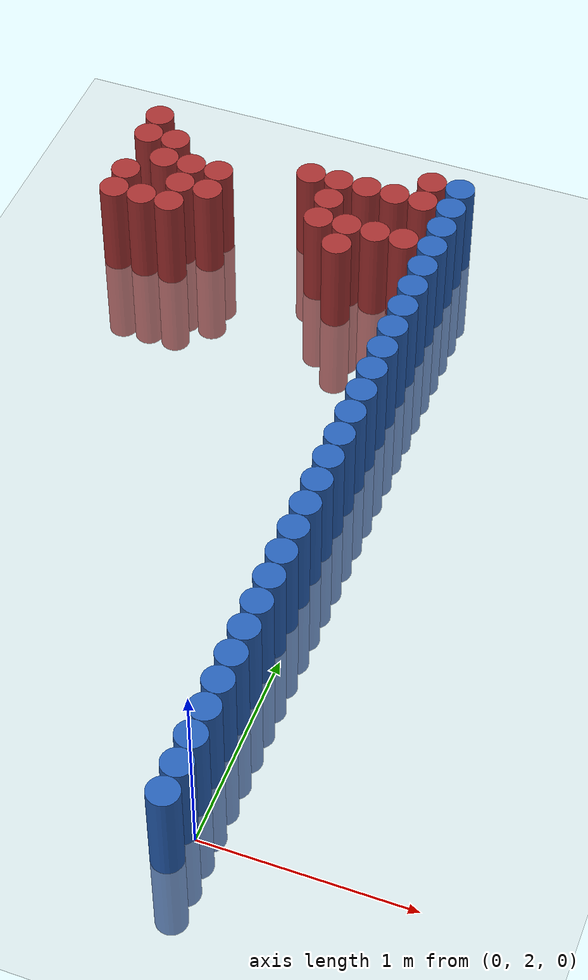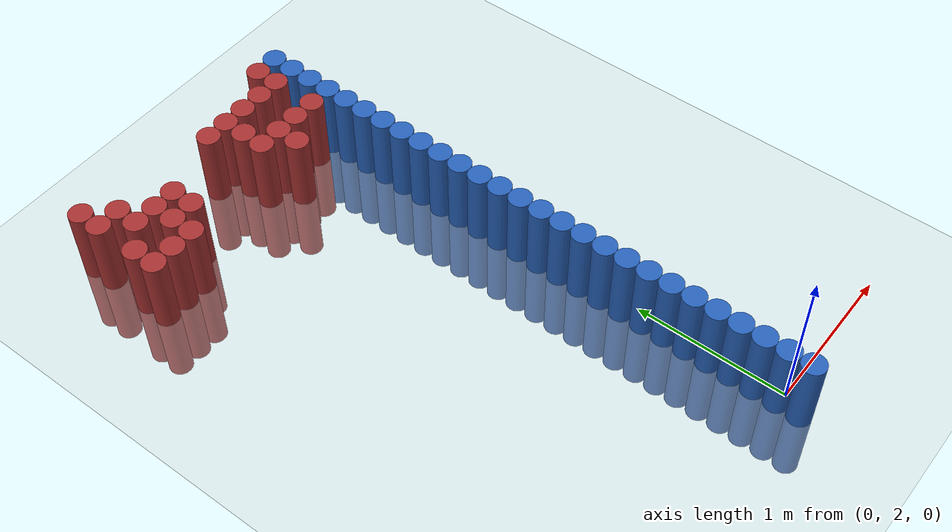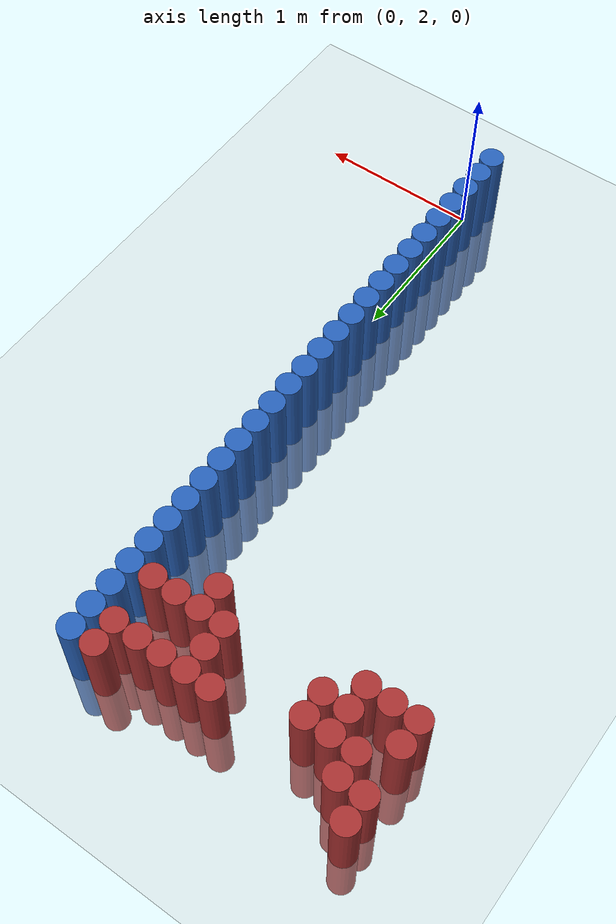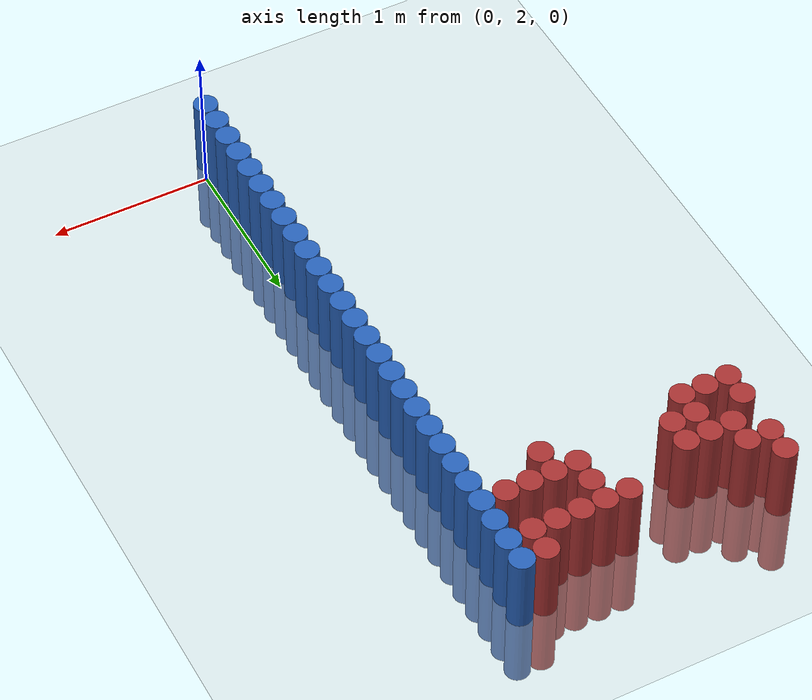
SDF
<sdf version="1.6">
 <world name="default">
  <model name="ground_plane">
   <static>1</static>
   <link name="link">
    <collision name="collision">
     <geometry><plane><normal>0 0 1</normal><size>100 100</size></plane></geometry>
     <surface><friction><ode><mu>100</mu><mu2>50</mu2></ode></friction></surface>
    </collision>
    <visual name="visual">
     <cast_shadows>0</cast_shadows>
     <geometry><plane><normal>0 0 1</normal><size>100 100</size></plane></geometry>
     <material>
      <script><uri>file://media/materials/scripts/gazebo.material</uri><name>Gazebo/Grey</name></script>
     </material>
    </visual>
   </link>
  </model>
  <model name="unit_cylinder_52">
   <static>1</static>
   <pose>-0.075000 1.875000 0.000000 0.000000 0.000000 0.000000</pose>
   <link name="link">
    <inertial>
     <mass>1</mass>
     <inertia><ixx>0.145833</ixx><ixy>0</ixy><ixz>0</ixz><iyy>0.145833</iyy><iyz>0</iyz><izz>0.125</izz></inertia>
    </inertial>
    <collision name="collision">
     <geometry><cylinder><radius>0.075000</radius><length>1</length></cylinder></geometry>
    </collision>
    <visual name="visual">
     <geometry><cylinder><radius>0.075000</radius><length>1</length></cylinder></geometry>
     <material>
      <ambient>0.152000 0.379000 0.720000 1</ambient>
      <diffuse>0.152000 0.379000 0.720000 1</diffuse>
     </material>
     <material>
      <script><name>Gazebo/Grey</name><uri>file://media/materials/scripts/gazebo.material</uri></script>
     </material>
    </visual>
   </link>
  </model>
  <model name="unit_cylinder_54">
   <static>1</static>
   <pose>-0.075000 2.025000 0.000000 0.000000 0.000000 0.000000</pose>
   <link name="link">
    <inertial>
     <mass>1</mass>
     <inertia><ixx>0.145833</ixx><ixy>0</ixy><ixz>0</ixz><iyy>0.145833</iyy><iyz>0</iyz><izz>0.125</izz></inertia>
    </inertial>
    <collision name="collision">
     <geometry><cylinder><radius>0.075000</radius><length>1</length></cylinder></geometry>
    </collision>
    <visual name="visual">
     <geometry><cylinder><radius>0.075000</radius><length>1</length></cylinder></geometry>
     <material>
      <ambient>0.152000 0.379000 0.720000 1</ambient>
      <diffuse>0.152000 0.379000 0.720000 1</diffuse>
     </material>
     <material>
      <script><name>Gazebo/Grey</name><uri>file://media/materials/scripts/gazebo.material</uri></script>
     </material>
    </visual>
   </link>
  </model>
  <model name="unit_cylinder_56">
   <static>1</static>
   <pose>-0.075000 2.175000 0.000000 0.000000 0.000000 0.000000</pose>
   <link name="link">
    <inertial>
     <mass>1</mass>
     <inertia><ixx>0.145833</ixx><ixy>0</ixy><ixz>0</ixz><iyy>0.145833</iyy><iyz>0</iyz><izz>0.125</izz></inertia>
    </inertial>
    <collision name="collision">
     <geometry><cylinder><radius>0.075000</radius><length>1</length></cylinder></geometry>
    </collision>
    <visual name="visual">
     <geometry><cylinder><radius>0.075000</radius><length>1</length></cylinder></geometry>
     <material>
      <ambient>0.152000 0.379000 0.720000 1</ambient>
      <diffuse>0.152000 0.379000 0.720000 1</diffuse>
     </material>
     <material>
      <script><name>Gazebo/Grey</name><uri>file://media/materials/scripts/gazebo.material</uri></script>
     </material>
    </visual>
   </link>
  </model>
  <model name="unit_cylinder_58">
   <static>1</static>
   <pose>-0.075000 2.325000 0.000000 0.000000 0.000000 0.000000</pose>
   <link name="link">
    <inertial>
     <mass>1</mass>
     <inertia><ixx>0.145833</ixx><ixy>0</ixy><ixz>0</ixz><iyy>0.145833</iyy><iyz>0</iyz><izz>0.125</izz></inertia>
    </inertial>
    <collision name="collision">
     <geometry><cylinder><radius>0.075000</radius><length>1</length></cylinder></geometry>
    </collision>
    <visual name="visual">
     <geometry><cylinder><radius>0.075000</radius><length>1</length></cylinder></geometry>
     <material>
      <ambient>0.152000 0.379000 0.720000 1</ambient>
      <diffuse>0.152000 0.379000 0.720000 1</diffuse>
     </material>
     <material>
      <script><name>Gazebo/Grey</name><uri>file://media/materials/scripts/gazebo.material</uri></script>
     </material>
    </visual>
   </link>
  </model>
  <model name="unit_cylinder_60">
   <static>1</static>
   <pose>-0.075000 2.475000 0.000000 0.000000 0.000000 0.000000</pose>
   <link name="link">
    <inertial>
     <mass>1</mass>
     <inertia><ixx>0.145833</ixx><ixy>0</ixy><ixz>0</ixz><iyy>0.145833</iyy><iyz>0</iyz><izz>0.125</izz></inertia>
    </inertial>
    <collision name="collision">
     <geometry><cylinder><radius>0.075000</radius><length>1</length></cylinder></geometry>
    </collision>
    <visual name="visual">
     <geometry><cylinder><radius>0.075000</radius><length>1</length></cylinder></geometry>
     <material>
      <ambient>0.152000 0.379000 0.720000 1</ambient>
      <diffuse>0.152000 0.379000 0.720000 1</diffuse>
     </material>
     <material>
      <script><name>Gazebo/Grey</name><uri>file://media/materials/scripts/gazebo.material</uri></script>
     </material>
    </visual>
   </link>
  </model>
  <model name="unit_cylinder_62">
   <static>1</static>
   <pose>-0.075000 2.625000 0.000000 0.000000 0.000000 0.000000</pose>
   <link name="link">
    <inertial>
     <mass>1</mass>
     <inertia><ixx>0.145833</ixx><ixy>0</ixy><ixz>0</ixz><iyy>0.145833</iyy><iyz>0</iyz><izz>0.125</izz></inertia>
    </inertial>
    <collision name="collision">
     <geometry><cylinder><radius>0.075000</radius><length>1</length></cylinder></geometry>
    </collision>
    <visual name="visual">
     <geometry><cylinder><radius>0.075000</radius><length>1</length></cylinder></geometry>
     <material>
      <ambient>0.152000 0.379000 0.720000 1</ambient>
      <diffuse>0.152000 0.379000 0.720000 1</diffuse>
     </material>
     <material>
      <script><name>Gazebo/Grey</name><uri>file://media/materials/scripts/gazebo.material</uri></script>
     </material>
    </visual>
   </link>
  </model>
  <model name="unit_cylinder_64">
   <static>1</static>
   <pose>-0.075000 2.775000 0.000000 0.000000 0.000000 0.000000</pose>
   <link name="link">
    <inertial>
     <mass>1</mass>
     <inertia><ixx>0.145833</ixx><ixy>0</ixy><ixz>0</ixz><iyy>0.145833</iyy><iyz>0</iyz><izz>0.125</izz></inertia>
    </inertial>
    <collision name="collision">
     <geometry><cylinder><radius>0.075000</radius><length>1</length></cylinder></geometry>
    </collision>
    <visual name="visual">
     <geometry><cylinder><radius>0.075000</radius><length>1</length></cylinder></geometry>
     <material>
      <ambient>0.152000 0.379000 0.720000 1</ambient>
      <diffuse>0.152000 0.379000 0.720000 1</diffuse>
     </material>
     <material>
      <script><name>Gazebo/Grey</name><uri>file://media/materials/scripts/gazebo.material</uri></script>
     </material>
    </visual>
   </link>
  </model>
  <model name="unit_cylinder_66">
   <static>1</static>
   <pose>-0.075000 2.925000 0.000000 0.000000 0.000000 0.000000</pose>
   <link name="link">
    <inertial>
     <mass>1</mass>
     <inertia><ixx>0.145833</ixx><ixy>0</ixy><ixz>0</ixz><iyy>0.145833</iyy><iyz>0</iyz><izz>0.125</izz></inertia>
    </inertial>
    <collision name="collision">
     <geometry><cylinder><radius>0.075000</radius><length>1</length></cylinder></geometry>
    </collision>
    <visual name="visual">
     <geometry><cylinder><radius>0.075000</radius><length>1</length></cylinder></geometry>
     <material>
      <ambient>0.152000 0.379000 0.720000 1</ambient>
      <diffuse>0.152000 0.379000 0.720000 1</diffuse>
     </material>
     <material>
      <script><name>Gazebo/Grey</name><uri>file://media/materials/scripts/gazebo.material</uri></script>
     </material>
    </visual>
   </link>
  </model>
  <model name="unit_cylinder_68">
   <static>1</static>
   <pose>-0.075000 3.075000 0.000000 0.000000 0.000000 0.000000</pose>
   <link name="link">
    <inertial>
     <mass>1</mass>
     <inertia><ixx>0.145833</ixx><ixy>0</ixy><ixz>0</ixz><iyy>0.145833</iyy><iyz>0</iyz><izz>0.125</izz></inertia>
    </inertial>
    <collision name="collision">
     <geometry><cylinder><radius>0.075000</radius><length>1</length></cylinder></geometry>
    </collision>
    <visual name="visual">
     <geometry><cylinder><radius>0.075000</radius><length>1</length></cylinder></geometry>
     <material>
      <ambient>0.152000 0.379000 0.720000 1</ambient>
      <diffuse>0.152000 0.379000 0.720000 1</diffuse>
     </material>
     <material>
      <script><name>Gazebo/Grey</name><uri>file://media/materials/scripts/gazebo.material</uri></script>
     </material>
    </visual>
   </link>
  </model>
  <model name="unit_cylinder_70">
   <static>1</static>
   <pose>-0.075000 3.225000 0.000000 0.000000 0.000000 0.000000</pose>
   <link name="link">
    <inertial>
     <mass>1</mass>
     <inertia><ixx>0.145833</ixx><ixy>0</ixy><ixz>0</ixz><iyy>0.145833</iyy><iyz>0</iyz><izz>0.125</izz></inertia>
    </inertial>
    <collision name="collision">
     <geometry><cylinder><radius>0.075000</radius><length>1</length></cylinder></geometry>
    </collision>
    <visual name="visual">
     <geometry><cylinder><radius>0.075000</radius><length>1</length></cylinder></geometry>
     <material>
      <ambient>0.152000 0.379000 0.720000 1</ambient>
      <diffuse>0.152000 0.379000 0.720000 1</diffuse>
     </material>
     <material>
      <script><name>Gazebo/Grey</name><uri>file://media/materials/scripts/gazebo.material</uri></script>
     </material>
    </visual>
   </link>
  </model>
  <model name="unit_cylinder_72">
   <static>1</static>
   <pose>-0.075000 3.375000 0.000000 0.000000 0.000000 0.000000</pose>
   <link name="link">
    <inertial>
     <mass>1</mass>
     <inertia><ixx>0.145833</ixx><ixy>0</ixy><ixz>0</ixz><iyy>0.145833</iyy><iyz>0</iyz><izz>0.125</izz></inertia>
    </inertial>
    <collision name="collision">
     <geometry><cylinder><radius>0.075000</radius><length>1</length></cylinder></geometry>
    </collision>
    <visual name="visual">
     <geometry><cylinder><radius>0.075000</radius><length>1</length></cylinder></geometry>
     <material>
      <ambient>0.152000 0.379000 0.720000 1</ambient>
      <diffuse>0.152000 0.379000 0.720000 1</diffuse>
     </material>
     <material>
      <script><name>Gazebo/Grey</name><uri>file://media/materials/scripts/gazebo.material</uri></script>
     </material>
    </visual>
   </link>
  </model>
  <model name="unit_cylinder_74">
   <static>1</static>
   <pose>-0.075000 3.525000 0.000000 0.000000 0.000000 0.000000</pose>
   <link name="link">
    <inertial>
     <mass>1</mass>
     <inertia><ixx>0.145833</ixx><ixy>0</ixy><ixz>0</ixz><iyy>0.145833</iyy><iyz>0</iyz><izz>0.125</izz></inertia>
    </inertial>
    <collision name="collision">
     <geometry><cylinder><radius>0.075000</radius><length>1</length></cylinder></geometry>
    </collision>
    <visual name="visual">
     <geometry><cylinder><radius>0.075000</radius><length>1</length></cylinder></geometry>
     <material>
      <ambient>0.152000 0.379000 0.720000 1</ambient>
      <diffuse>0.152000 0.379000 0.720000 1</diffuse>
     </material>
     <material>
      <script><name>Gazebo/Grey</name><uri>file://media/materials/scripts/gazebo.material</uri></script>
     </material>
    </visual>
   </link>
  </model>
  <model name="unit_cylinder_76">
   <static>1</static>
   <pose>-0.075000 3.675000 0.000000 0.000000 0.000000 0.000000</pose>
   <link name="link">
    <inertial>
     <mass>1</mass>
     <inertia><ixx>0.145833</ixx><ixy>0</ixy><ixz>0</ixz><iyy>0.145833</iyy><iyz>0</iyz><izz>0.125</izz></inertia>
    </inertial>
    <collision name="collision">
     <geometry><cylinder><radius>0.075000</radius><length>1</length></cylinder></geometry>
    </collision>
    <visual name="visual">
     <geometry><cylinder><radius>0.075000</radius><length>1</length></cylinder></geometry>
     <material>
      <ambient>0.152000 0.379000 0.720000 1</ambient>
      <diffuse>0.152000 0.379000 0.720000 1</diffuse>
     </material>
     <material>
      <script><name>Gazebo/Grey</name><uri>file://media/materials/scripts/gazebo.material</uri></script>
     </material>
    </visual>
   </link>
  </model>
  <model name="unit_cylinder_78">
   <static>1</static>
   <pose>-0.075000 3.825000 0.000000 0.000000 0.000000 0.000000</pose>
   <link name="link">
    <inertial>
     <mass>1</mass>
     <inertia><ixx>0.145833</ixx><ixy>0</ixy><ixz>0</ixz><iyy>0.145833</iyy><iyz>0</iyz><izz>0.125</izz></inertia>
    </inertial>
    <collision name="collision">
     <geometry><cylinder><radius>0.075000</radius><length>1</length></cylinder></geometry>
    </collision>
    <visual name="visual">
     <geometry><cylinder><radius>0.075000</radius><length>1</length></cylinder></geometry>
     <material>
      <ambient>0.152000 0.379000 0.720000 1</ambient>
      <diffuse>0.152000 0.379000 0.720000 1</diffuse>
     </material>
     <material>
      <script><name>Gazebo/Grey</name><uri>file://media/materials/scripts/gazebo.material</uri></script>
     </material>
    </visual>
   </link>
  </model>
  <model name="unit_cylinder_80">
   <static>1</static>
   <pose>-0.075000 3.975000 0.000000 0.000000 0.000000 0.000000</pose>
   <link name="link">
    <inertial>
     <mass>1</mass>
     <inertia><ixx>0.145833</ixx><ixy>0</ixy><ixz>0</ixz><iyy>0.145833</iyy><iyz>0</iyz><izz>0.125</izz></inertia>
    </inertial>
    <collision name="collision">
     <geometry><cylinder><radius>0.075000</radius><length>1</length></cylinder></geometry>
    </collision>
    <visual name="visual">
     <geometry><cylinder><radius>0.075000</radius><length>1</length></cylinder></geometry>
     <material>
      <ambient>0.152000 0.379000 0.720000 1</ambient>
      <diffuse>0.152000 0.379000 0.720000 1</diffuse>
     </material>
     <material>
      <script><name>Gazebo/Grey</name><uri>file://media/materials/scripts/gazebo.material</uri></script>
     </material>
    </visual>
   </link>
  </model>
  <model name="unit_cylinder_82">
   <static>1</static>
   <pose>-0.075000 4.125000 0.000000 0.000000 0.000000 0.000000</pose>
   <link name="link">
    <inertial>
     <mass>1</mass>
     <inertia><ixx>0.145833</ixx><ixy>0</ixy><ixz>0</ixz><iyy>0.145833</iyy><iyz>0</iyz><izz>0.125</izz></inertia>
    </inertial>
    <collision name="collision">
     <geometry><cylinder><radius>0.075000</radius><length>1</length></cylinder></geometry>
    </collision>
    <visual name="visual">
     <geometry><cylinder><radius>0.075000</radius><length>1</length></cylinder></geometry>
     <material>
      <ambient>0.152000 0.379000 0.720000 1</ambient>
      <diffuse>0.152000 0.379000 0.720000 1</diffuse>
     </material>
     <material>
      <script><name>Gazebo/Grey</name><uri>file://media/materials/scripts/gazebo.material</uri></script>
     </material>
    </visual>
   </link>
  </model>
  <model name="unit_cylinder_84">
   <static>1</static>
   <pose>-0.075000 4.275000 0.000000 0.000000 0.000000 0.000000</pose>
   <link name="link">
    <inertial>
     <mass>1</mass>
     <inertia><ixx>0.145833</ixx><ixy>0</ixy><ixz>0</ixz><iyy>0.145833</iyy><iyz>0</iyz><izz>0.125</izz></inertia>
    </inertial>
    <collision name="collision">
     <geometry><cylinder><radius>0.075000</radius><length>1</length></cylinder></geometry>
    </collision>
    <visual name="visual">
     <geometry><cylinder><radius>0.075000</radius><length>1</length></cylinder></geometry>
     <material>
      <ambient>0.152000 0.379000 0.720000 1</ambient>
      <diffuse>0.152000 0.379000 0.720000 1</diffuse>
     </material>
     <material>
      <script><name>Gazebo/Grey</name><uri>file://media/materials/scripts/gazebo.material</uri></script>
     </material>
    </visual>
   </link>
  </model>
  <model name="unit_cylinder_86">
   <static>1</static>
   <pose>-0.075000 4.425000 0.000000 0.000000 0.000000 0.000000</pose>
   <link name="link">
    <inertial>
     <mass>1</mass>
     <inertia><ixx>0.145833</ixx><ixy>0</ixy><ixz>0</ixz><iyy>0.145833</iyy><iyz>0</iyz><izz>0.125</izz></inertia>
    </inertial>
    <collision name="collision">
     <geometry><cylinder><radius>0.075000</radius><length>1</length></cylinder></geometry>
    </collision>
    <visual name="visual">
     <geometry><cylinder><radius>0.075000</radius><length>1</length></cylinder></geometry>
     <material>
      <ambient>0.152000 0.379000 0.720000 1</ambient>
      <diffuse>0.152000 0.379000 0.720000 1</diffuse>
     </material>
     <material>
      <script><name>Gazebo/Grey</name><uri>file://media/materials/scripts/gazebo.material</uri></script>
     </material>
    </visual>
   </link>
  </model>
  <model name="unit_cylinder_88">
   <static>1</static>
   <pose>-0.075000 4.575000 0.000000 0.000000 0.000000 0.000000</pose>
   <link name="link">
    <inertial>
     <mass>1</mass>
     <inertia><ixx>0.145833</ixx><ixy>0</ixy><ixz>0</ixz><iyy>0.145833</iyy><iyz>0</iyz><izz>0.125</izz></inertia>
    </inertial>
    <collision name="collision">
     <geometry><cylinder><radius>0.075000</radius><length>1</length></cylinder></geometry>
    </collision>
    <visual name="visual">
     <geometry><cylinder><radius>0.075000</radius><length>1</length></cylinder></geometry>
     <material>
      <ambient>0.152000 0.379000 0.720000 1</ambient>
      <diffuse>0.152000 0.379000 0.720000 1</diffuse>
     </material>
     <material>
      <script><name>Gazebo/Grey</name><uri>file://media/materials/scripts/gazebo.material</uri></script>
     </material>
    </visual>
   </link>
  </model>
  <model name="unit_cylinder_90">
   <static>1</static>
   <pose>-0.075000 4.725000 0.000000 0.000000 0.000000 0.000000</pose>
   <link name="link">
    <inertial>
     <mass>1</mass>
     <inertia><ixx>0.145833</ixx><ixy>0</ixy><ixz>0</ixz><iyy>0.145833</iyy><iyz>0</iyz><izz>0.125</izz></inertia>
    </inertial>
    <collision name="collision">
     <geometry><cylinder><radius>0.075000</radius><length>1</length></cylinder></geometry>
    </collision>
    <visual name="visual">
     <geometry><cylinder><radius>0.075000</radius><length>1</length></cylinder></geometry>
     <material>
      <ambient>0.152000 0.379000 0.720000 1</ambient>
      <diffuse>0.152000 0.379000 0.720000 1</diffuse>
     </material>
     <material>
      <script><name>Gazebo/Grey</name><uri>file://media/materials/scripts/gazebo.material</uri></script>
     </material>
    </visual>
   </link>
  </model>
  <model name="unit_cylinder_92">
   <static>1</static>
   <pose>-0.075000 4.875000 0.000000 0.000000 0.000000 0.000000</pose>
   <link name="link">
    <inertial>
     <mass>1</mass>
     <inertia><ixx>0.145833</ixx><ixy>0</ixy><ixz>0</ixz><iyy>0.145833</iyy><iyz>0</iyz><izz>0.125</izz></inertia>
    </inertial>
    <collision name="collision">
     <geometry><cylinder><radius>0.075000</radius><length>1</length></cylinder></geometry>
    </collision>
    <visual name="visual">
     <geometry><cylinder><radius>0.075000</radius><length>1</length></cylinder></geometry>
     <material>
      <ambient>0.152000 0.379000 0.720000 1</ambient>
      <diffuse>0.152000 0.379000 0.720000 1</diffuse>
     </material>
     <material>
      <script><name>Gazebo/Grey</name><uri>file://media/materials/scripts/gazebo.material</uri></script>
     </material>
    </visual>
   </link>
  </model>
  <model name="unit_cylinder_94">
   <static>1</static>
   <pose>-0.075000 5.025000 0.000000 0.000000 0.000000 0.000000</pose>
   <link name="link">
    <inertial>
     <mass>1</mass>
     <inertia><ixx>0.145833</ixx><ixy>0</ixy><ixz>0</ixz><iyy>0.145833</iyy><iyz>0</iyz><izz>0.125</izz></inertia>
    </inertial>
    <collision name="collision">
     <geometry><cylinder><radius>0.075000</radius><length>1</length></cylinder></geometry>
    </collision>
    <visual name="visual">
     <geometry><cylinder><radius>0.075000</radius><length>1</length></cylinder></geometry>
     <material>
      <ambient>0.152000 0.379000 0.720000 1</ambient>
      <diffuse>0.152000 0.379000 0.720000 1</diffuse>
     </material>
     <material>
      <script><name>Gazebo/Grey</name><uri>file://media/materials/scripts/gazebo.material</uri></script>
     </material>
    </visual>
   </link>
  </model>
  <model name="unit_cylinder_241">
   <static>1</static>
   <pose>-1.725000 5.175000 0.000000 0.000000 0.000000 0.000000</pose>
   <link name="link">
    <inertial>
     <mass>1</mass>
     <inertia><ixx>0.145833</ixx><ixy>0</ixy><ixz>0</ixz><iyy>0.145833</iyy><iyz>0</iyz><izz>0.125</izz></inertia>
    </inertial>
    <collision name="collision">
     <geometry><cylinder><radius>0.075000</radius><length>1</length></cylinder></geometry>
    </collision>
    <visual name="visual">
     <geometry><cylinder><radius>0.075000</radius><length>1</length></cylinder></geometry>
     <material>
      <ambient>0.648000 0.192000 0.192000 1</ambient>
      <diffuse>0.648000 0.192000 0.192000 1</diffuse>
     </material>
     <material>
      <script><name>Gazebo/Grey</name><uri>file://media/materials/scripts/gazebo.material</uri></script>
     </material>
    </visual>
   </link>
  </model>
  <model name="unit_cylinder_242">
   <static>1</static>
   <pose>-1.725000 5.325000 0.000000 0.000000 0.000000 0.000000</pose>
   <link name="link">
    <inertial>
     <mass>1</mass>
     <inertia><ixx>0.145833</ixx><ixy>0</ixy><ixz>0</ixz><iyy>0.145833</iyy><iyz>0</iyz><izz>0.125</izz></inertia>
    </inertial>
    <collision name="collision">
     <geometry><cylinder><radius>0.075000</radius><length>1</length></cylinder></geometry>
    </collision>
    <visual name="visual">
     <geometry><cylinder><radius>0.075000</radius><length>1</length></cylinder></geometry>
     <material>
      <ambient>0.648000 0.192000 0.192000 1</ambient>
      <diffuse>0.648000 0.192000 0.192000 1</diffuse>
     </material>
     <material>
      <script><name>Gazebo/Grey</name><uri>file://media/materials/scripts/gazebo.material</uri></script>
     </material>
    </visual>
   </link>
  </model>
  <model name="unit_cylinder_243">
   <static>1</static>
   <pose>-1.725000 5.625000 0.000000 0.000000 0.000000 0.000000</pose>
   <link name="link">
    <inertial>
     <mass>1</mass>
     <inertia><ixx>0.145833</ixx><ixy>0</ixy><ixz>0</ixz><iyy>0.145833</iyy><iyz>0</iyz><izz>0.125</izz></inertia>
    </inertial>
    <collision name="collision">
     <geometry><cylinder><radius>0.075000</radius><length>1</length></cylinder></geometry>
    </collision>
    <visual name="visual">
     <geometry><cylinder><radius>0.075000</radius><length>1</length></cylinder></geometry>
     <material>
      <ambient>0.648000 0.192000 0.192000 1</ambient>
      <diffuse>0.648000 0.192000 0.192000 1</diffuse>
     </material>
     <material>
      <script><name>Gazebo/Grey</name><uri>file://media/materials/scripts/gazebo.material</uri></script>
     </material>
    </visual>
   </link>
  </model>
  <model name="unit_cylinder_244">
   <static>1</static>
   <pose>-1.725000 5.775000 0.000000 0.000000 0.000000 0.000000</pose>
   <link name="link">
    <inertial>
     <mass>1</mass>
     <inertia><ixx>0.145833</ixx><ixy>0</ixy><ixz>0</ixz><iyy>0.145833</iyy><iyz>0</iyz><izz>0.125</izz></inertia>
    </inertial>
    <collision name="collision">
     <geometry><cylinder><radius>0.075000</radius><length>1</length></cylinder></geometry>
    </collision>
    <visual name="visual">
     <geometry><cylinder><radius>0.075000</radius><length>1</length></cylinder></geometry>
     <material>
      <ambient>0.648000 0.192000 0.192000 1</ambient>
      <diffuse>0.648000 0.192000 0.192000 1</diffuse>
     </material>
     <material>
      <script><name>Gazebo/Grey</name><uri>file://media/materials/scripts/gazebo.material</uri></script>
     </material>
    </visual>
   </link>
  </model>
  <model name="unit_cylinder_256">
   <static>1</static>
   <pose>-1.575000 5.175000 0.000000 0.000000 0.000000 0.000000</pose>
   <link name="link">
    <inertial>
     <mass>1</mass>
     <inertia><ixx>0.145833</ixx><ixy>0</ixy><ixz>0</ixz><iyy>0.145833</iyy><iyz>0</iyz><izz>0.125</izz></inertia>
    </inertial>
    <collision name="collision">
     <geometry><cylinder><radius>0.075000</radius><length>1</length></cylinder></geometry>
    </collision>
    <visual name="visual">
     <geometry><cylinder><radius>0.075000</radius><length>1</length></cylinder></geometry>
     <material>
      <ambient>0.648000 0.192000 0.192000 1</ambient>
      <diffuse>0.648000 0.192000 0.192000 1</diffuse>
     </material>
     <material>
      <script><name>Gazebo/Grey</name><uri>file://media/materials/scripts/gazebo.material</uri></script>
     </material>
    </visual>
   </link>
  </model>
  <model name="unit_cylinder_257">
   <static>1</static>
   <pose>-1.575000 5.475000 0.000000 0.000000 0.000000 0.000000</pose>
   <link name="link">
    <inertial>
     <mass>1</mass>
     <inertia><ixx>0.145833</ixx><ixy>0</ixy><ixz>0</ixz><iyy>0.145833</iyy><iyz>0</iyz><izz>0.125</izz></inertia>
    </inertial>
    <collision name="collision">
     <geometry><cylinder><radius>0.075000</radius><length>1</length></cylinder></geometry>
    </collision>
    <visual name="visual">
     <geometry><cylinder><radius>0.075000</radius><length>1</length></cylinder></geometry>
     <material>
      <ambient>0.648000 0.192000 0.192000 1</ambient>
      <diffuse>0.648000 0.192000 0.192000 1</diffuse>
     </material>
     <material>
      <script><name>Gazebo/Grey</name><uri>file://media/materials/scripts/gazebo.material</uri></script>
     </material>
    </visual>
   </link>
  </model>
  <model name="unit_cylinder_258">
   <static>1</static>
   <pose>-1.575000 5.625000 0.000000 0.000000 0.000000 0.000000</pose>
   <link name="link">
    <inertial>
     <mass>1</mass>
     <inertia><ixx>0.145833</ixx><ixy>0</ixy><ixz>0</ixz><iyy>0.145833</iyy><iyz>0</iyz><izz>0.125</izz></inertia>
    </inertial>
    <collision name="collision">
     <geometry><cylinder><radius>0.075000</radius><length>1</length></cylinder></geometry>
    </collision>
    <visual name="visual">
     <geometry><cylinder><radius>0.075000</radius><length>1</length></cylinder></geometry>
     <material>
      <ambient>0.648000 0.192000 0.192000 1</ambient>
      <diffuse>0.648000 0.192000 0.192000 1</diffuse>
     </material>
     <material>
      <script><name>Gazebo/Grey</name><uri>file://media/materials/scripts/gazebo.material</uri></script>
     </material>
    </visual>
   </link>
  </model>
  <model name="unit_cylinder_267">
   <static>1</static>
   <pose>-1.425000 5.175000 0.000000 0.000000 0.000000 0.000000</pose>
   <link name="link">
    <inertial>
     <mass>1</mass>
     <inertia><ixx>0.145833</ixx><ixy>0</ixy><ixz>0</ixz><iyy>0.145833</iyy><iyz>0</iyz><izz>0.125</izz></inertia>
    </inertial>
    <collision name="collision">
     <geometry><cylinder><radius>0.075000</radius><length>1</length></cylinder></geometry>
    </collision>
    <visual name="visual">
     <geometry><cylinder><radius>0.075000</radius><length>1</length></cylinder></geometry>
     <material>
      <ambient>0.648000 0.192000 0.192000 1</ambient>
      <diffuse>0.648000 0.192000 0.192000 1</diffuse>
     </material>
     <material>
      <script><name>Gazebo/Grey</name><uri>file://media/materials/scripts/gazebo.material</uri></script>
     </material>
    </visual>
   </link>
  </model>
  <model name="unit_cylinder_268">
   <static>1</static>
   <pose>-1.425000 5.325000 0.000000 0.000000 0.000000 0.000000</pose>
   <link name="link">
    <inertial>
     <mass>1</mass>
     <inertia><ixx>0.145833</ixx><ixy>0</ixy><ixz>0</ixz><iyy>0.145833</iyy><iyz>0</iyz><izz>0.125</izz></inertia>
    </inertial>
    <collision name="collision">
     <geometry><cylinder><radius>0.075000</radius><length>1</length></cylinder></geometry>
    </collision>
    <visual name="visual">
     <geometry><cylinder><radius>0.075000</radius><length>1</length></cylinder></geometry>
     <material>
      <ambient>0.648000 0.192000 0.192000 1</ambient>
      <diffuse>0.648000 0.192000 0.192000 1</diffuse>
     </material>
     <material>
      <script><name>Gazebo/Grey</name><uri>file://media/materials/scripts/gazebo.material</uri></script>
     </material>
    </visual>
   </link>
  </model>
  <model name="unit_cylinder_269">
   <static>1</static>
   <pose>-1.425000 5.475000 0.000000 0.000000 0.000000 0.000000</pose>
   <link name="link">
    <inertial>
     <mass>1</mass>
     <inertia><ixx>0.145833</ixx><ixy>0</ixy><ixz>0</ixz><iyy>0.145833</iyy><iyz>0</iyz><izz>0.125</izz></inertia>
    </inertial>
    <collision name="collision">
     <geometry><cylinder><radius>0.075000</radius><length>1</length></cylinder></geometry>
    </collision>
    <visual name="visual">
     <geometry><cylinder><radius>0.075000</radius><length>1</length></cylinder></geometry>
     <material>
      <ambient>0.648000 0.192000 0.192000 1</ambient>
      <diffuse>0.648000 0.192000 0.192000 1</diffuse>
     </material>
     <material>
      <script><name>Gazebo/Grey</name><uri>file://media/materials/scripts/gazebo.material</uri></script>
     </material>
    </visual>
   </link>
  </model>
  <model name="unit_cylinder_276">
   <static>1</static>
   <pose>-1.275000 5.325000 0.000000 0.000000 0.000000 0.000000</pose>
   <link name="link">
    <inertial>
     <mass>1</mass>
     <inertia><ixx>0.145833</ixx><ixy>0</ixy><ixz>0</ixz><iyy>0.145833</iyy><iyz>0</iyz><izz>0.125</izz></inertia>
    </inertial>
    <collision name="collision">
     <geometry><cylinder><radius>0.075000</radius><length>1</length></cylinder></geometry>
    </collision>
    <visual name="visual">
     <geometry><cylinder><radius>0.075000</radius><length>1</length></cylinder></geometry>
     <material>
      <ambient>0.648000 0.192000 0.192000 1</ambient>
      <diffuse>0.648000 0.192000 0.192000 1</diffuse>
     </material>
     <material>
      <script><name>Gazebo/Grey</name><uri>file://media/materials/scripts/gazebo.material</uri></script>
     </material>
    </visual>
   </link>
  </model>
  <model name="unit_cylinder_277">
   <static>1</static>
   <pose>-1.275000 5.475000 0.000000 0.000000 0.000000 0.000000</pose>
   <link name="link">
    <inertial>
     <mass>1</mass>
     <inertia><ixx>0.145833</ixx><ixy>0</ixy><ixz>0</ixz><iyy>0.145833</iyy><iyz>0</iyz><izz>0.125</izz></inertia>
    </inertial>
    <collision name="collision">
     <geometry><cylinder><radius>0.075000</radius><length>1</length></cylinder></geometry>
    </collision>
    <visual name="visual">
     <geometry><cylinder><radius>0.075000</radius><length>1</length></cylinder></geometry>
     <material>
      <ambient>0.648000 0.192000 0.192000 1</ambient>
      <diffuse>0.648000 0.192000 0.192000 1</diffuse>
     </material>
     <material>
      <script><name>Gazebo/Grey</name><uri>file://media/materials/scripts/gazebo.material</uri></script>
     </material>
    </visual>
   </link>
  </model>
  <model name="unit_cylinder_281">
   <static>1</static>
   <pose>-0.825000 5.625000 0.000000 0.000000 0.000000 0.000000</pose>
   <link name="link">
    <inertial>
     <mass>1</mass>
     <inertia><ixx>0.145833</ixx><ixy>0</ixy><ixz>0</ixz><iyy>0.145833</iyy><iyz>0</iyz><izz>0.125</izz></inertia>
    </inertial>
    <collision name="collision">
     <geometry><cylinder><radius>0.075000</radius><length>1</length></cylinder></geometry>
    </collision>
    <visual name="visual">
     <geometry><cylinder><radius>0.075000</radius><length>1</length></cylinder></geometry>
     <material>
      <ambient>0.648000 0.192000 0.192000 1</ambient>
      <diffuse>0.648000 0.192000 0.192000 1</diffuse>
     </material>
     <material>
      <script><name>Gazebo/Grey</name><uri>file://media/materials/scripts/gazebo.material</uri></script>
     </material>
    </visual>
   </link>
  </model>
  <model name="unit_cylinder_284">
   <static>1</static>
   <pose>-0.675000 5.325000 0.000000 0.000000 0.000000 0.000000</pose>
   <link name="link">
    <inertial>
     <mass>1</mass>
     <inertia><ixx>0.145833</ixx><ixy>0</ixy><ixz>0</ixz><iyy>0.145833</iyy><iyz>0</iyz><izz>0.125</izz></inertia>
    </inertial>
    <collision name="collision">
     <geometry><cylinder><radius>0.075000</radius><length>1</length></cylinder></geometry>
    </collision>
    <visual name="visual">
     <geometry><cylinder><radius>0.075000</radius><length>1</length></cylinder></geometry>
     <material>
      <ambient>0.648000 0.192000 0.192000 1</ambient>
      <diffuse>0.648000 0.192000 0.192000 1</diffuse>
     </material>
     <material>
      <script><name>Gazebo/Grey</name><uri>file://media/materials/scripts/gazebo.material</uri></script>
     </material>
    </visual>
   </link>
  </model>
  <model name="unit_cylinder_285">
   <static>1</static>
   <pose>-0.675000 5.475000 0.000000 0.000000 0.000000 0.000000</pose>
   <link name="link">
    <inertial>
     <mass>1</mass>
     <inertia><ixx>0.145833</ixx><ixy>0</ixy><ixz>0</ixz><iyy>0.145833</iyy><iyz>0</iyz><izz>0.125</izz></inertia>
    </inertial>
    <collision name="collision">
     <geometry><cylinder><radius>0.075000</radius><length>1</length></cylinder></geometry>
    </collision>
    <visual name="visual">
     <geometry><cylinder><radius>0.075000</radius><length>1</length></cylinder></geometry>
     <material>
      <ambient>0.648000 0.192000 0.192000 1</ambient>
      <diffuse>0.648000 0.192000 0.192000 1</diffuse>
     </material>
     <material>
      <script><name>Gazebo/Grey</name><uri>file://media/materials/scripts/gazebo.material</uri></script>
     </material>
    </visual>
   </link>
  </model>
  <model name="unit_cylinder_286">
   <static>1</static>
   <pose>-0.675000 5.625000 0.000000 0.000000 0.000000 0.000000</pose>
   <link name="link">
    <inertial>
     <mass>1</mass>
     <inertia><ixx>0.145833</ixx><ixy>0</ixy><ixz>0</ixz><iyy>0.145833</iyy><iyz>0</iyz><izz>0.125</izz></inertia>
    </inertial>
    <collision name="collision">
     <geometry><cylinder><radius>0.075000</radius><length>1</length></cylinder></geometry>
    </collision>
    <visual name="visual">
     <geometry><cylinder><radius>0.075000</radius><length>1</length></cylinder></geometry>
     <material>
      <ambient>0.648000 0.192000 0.192000 1</ambient>
      <diffuse>0.648000 0.192000 0.192000 1</diffuse>
     </material>
     <material>
      <script><name>Gazebo/Grey</name><uri>file://media/materials/scripts/gazebo.material</uri></script>
     </material>
    </visual>
   </link>
  </model>
  <model name="unit_cylinder_293">
   <static>1</static>
   <pose>-0.525000 5.175000 0.000000 0.000000 0.000000 0.000000</pose>
   <link name="link">
    <inertial>
     <mass>1</mass>
     <inertia><ixx>0.145833</ixx><ixy>0</ixy><ixz>0</ixz><iyy>0.145833</iyy><iyz>0</iyz><izz>0.125</izz></inertia>
    </inertial>
    <collision name="collision">
     <geometry><cylinder><radius>0.075000</radius><length>1</length></cylinder></geometry>
    </collision>
    <visual name="visual">
     <geometry><cylinder><radius>0.075000</radius><length>1</length></cylinder></geometry>
     <material>
      <ambient>0.648000 0.192000 0.192000 1</ambient>
      <diffuse>0.648000 0.192000 0.192000 1</diffuse>
     </material>
     <material>
      <script><name>Gazebo/Grey</name><uri>file://media/materials/scripts/gazebo.material</uri></script>
     </material>
    </visual>
   </link>
  </model>
  <model name="unit_cylinder_294">
   <static>1</static>
   <pose>-0.525000 5.325000 0.000000 0.000000 0.000000 0.000000</pose>
   <link name="link">
    <inertial>
     <mass>1</mass>
     <inertia><ixx>0.145833</ixx><ixy>0</ixy><ixz>0</ixz><iyy>0.145833</iyy><iyz>0</iyz><izz>0.125</izz></inertia>
    </inertial>
    <collision name="collision">
     <geometry><cylinder><radius>0.075000</radius><length>1</length></cylinder></geometry>
    </collision>
    <visual name="visual">
     <geometry><cylinder><radius>0.075000</radius><length>1</length></cylinder></geometry>
     <material>
      <ambient>0.648000 0.192000 0.192000 1</ambient>
      <diffuse>0.648000 0.192000 0.192000 1</diffuse>
     </material>
     <material>
      <script><name>Gazebo/Grey</name><uri>file://media/materials/scripts/gazebo.material</uri></script>
     </material>
    </visual>
   </link>
  </model>
  <model name="unit_cylinder_295">
   <static>1</static>
   <pose>-0.525000 5.625000 0.000000 0.000000 0.000000 0.000000</pose>
   <link name="link">
    <inertial>
     <mass>1</mass>
     <inertia><ixx>0.145833</ixx><ixy>0</ixy><ixz>0</ixz><iyy>0.145833</iyy><iyz>0</iyz><izz>0.125</izz></inertia>
    </inertial>
    <collision name="collision">
     <geometry><cylinder><radius>0.075000</radius><length>1</length></cylinder></geometry>
    </collision>
    <visual name="visual">
     <geometry><cylinder><radius>0.075000</radius><length>1</length></cylinder></geometry>
     <material>
      <ambient>0.648000 0.192000 0.192000 1</ambient>
      <diffuse>0.648000 0.192000 0.192000 1</diffuse>
     </material>
     <material>
      <script><name>Gazebo/Grey</name><uri>file://media/materials/scripts/gazebo.material</uri></script>
     </material>
    </visual>
   </link>
  </model>
  <model name="unit_cylinder_306">
   <static>1</static>
   <pose>-0.375000 5.325000 0.000000 0.000000 0.000000 0.000000</pose>
   <link name="link">
    <inertial>
     <mass>1</mass>
     <inertia><ixx>0.145833</ixx><ixy>0</ixy><ixz>0</ixz><iyy>0.145833</iyy><iyz>0</iyz><izz>0.125</izz></inertia>
    </inertial>
    <collision name="collision">
     <geometry><cylinder><radius>0.075000</radius><length>1</length></cylinder></geometry>
    </collision>
    <visual name="visual">
     <geometry><cylinder><radius>0.075000</radius><length>1</length></cylinder></geometry>
     <material>
      <ambient>0.648000 0.192000 0.192000 1</ambient>
      <diffuse>0.648000 0.192000 0.192000 1</diffuse>
     </material>
     <material>
      <script><name>Gazebo/Grey</name><uri>file://media/materials/scripts/gazebo.material</uri></script>
     </material>
    </visual>
   </link>
  </model>
  <model name="unit_cylinder_307">
   <static>1</static>
   <pose>-0.375000 5.625000 0.000000 0.000000 0.000000 0.000000</pose>
   <link name="link">
    <inertial>
     <mass>1</mass>
     <inertia><ixx>0.145833</ixx><ixy>0</ixy><ixz>0</ixz><iyy>0.145833</iyy><iyz>0</iyz><izz>0.125</izz></inertia>
    </inertial>
    <collision name="collision">
     <geometry><cylinder><radius>0.075000</radius><length>1</length></cylinder></geometry>
    </collision>
    <visual name="visual">
     <geometry><cylinder><radius>0.075000</radius><length>1</length></cylinder></geometry>
     <material>
      <ambient>0.648000 0.192000 0.192000 1</ambient>
      <diffuse>0.648000 0.192000 0.192000 1</diffuse>
     </material>
     <material>
      <script><name>Gazebo/Grey</name><uri>file://media/materials/scripts/gazebo.material</uri></script>
     </material>
    </visual>
   </link>
  </model>
  <model name="unit_cylinder_315">
   <static>1</static>
   <pose>-0.225000 5.325000 0.000000 0.000000 0.000000 0.000000</pose>
   <link name="link">
    <inertial>
     <mass>1</mass>
     <inertia><ixx>0.145833</ixx><ixy>0</ixy><ixz>0</ixz><iyy>0.145833</iyy><iyz>0</iyz><izz>0.125</izz></inertia>
    </inertial>
    <collision name="collision">
     <geometry><cylinder><radius>0.075000</radius><length>1</length></cylinder></geometry>
    </collision>
    <visual name="visual">
     <geometry><cylinder><radius>0.075000</radius><length>1</length></cylinder></geometry>
     <material>
      <ambient>0.648000 0.192000 0.192000 1</ambient>
      <diffuse>0.648000 0.192000 0.192000 1</diffuse>
     </material>
     <material>
      <script><name>Gazebo/Grey</name><uri>file://media/materials/scripts/gazebo.material</uri></script>
     </material>
    </visual>
   </link>
  </model>
  <model name="unit_cylinder_316">
   <static>1</static>
   <pose>-0.225000 5.625000 0.000000 0.000000 0.000000 0.000000</pose>
   <link name="link">
    <inertial>
     <mass>1</mass>
     <inertia><ixx>0.145833</ixx><ixy>0</ixy><ixz>0</ixz><iyy>0.145833</iyy><iyz>0</iyz><izz>0.125</izz></inertia>
    </inertial>
    <collision name="collision">
     <geometry><cylinder><radius>0.075000</radius><length>1</length></cylinder></geometry>
    </collision>
    <visual name="visual">
     <geometry><cylinder><radius>0.075000</radius><length>1</length></cylinder></geometry>
     <material>
      <ambient>0.648000 0.192000 0.192000 1</ambient>
      <diffuse>0.648000 0.192000 0.192000 1</diffuse>
     </material>
     <material>
      <script><name>Gazebo/Grey</name><uri>file://media/materials/scripts/gazebo.material</uri></script>
     </material>
    </visual>
   </link>
  </model>
  <model name="unit_cylinder_317">
   <static>1</static>
   <pose>-0.225000 5.775000 0.000000 0.000000 0.000000 0.000000</pose>
   <link name="link">
    <inertial>
     <mass>1</mass>
     <inertia><ixx>0.145833</ixx><ixy>0</ixy><ixz>0</ixz><iyy>0.145833</iyy><iyz>0</iyz><izz>0.125</izz></inertia>
    </inertial>
    <collision name="collision">
     <geometry><cylinder><radius>0.075000</radius><length>1</length></cylinder></geometry>
    </collision>
    <visual name="visual">
     <geometry><cylinder><radius>0.075000</radius><length>1</length></cylinder></geometry>
     <material>
      <ambient>0.648000 0.192000 0.192000 1</ambient>
      <diffuse>0.648000 0.192000 0.192000 1</diffuse>
     </material>
     <material>
      <script><name>Gazebo/Grey</name><uri>file://media/materials/scripts/gazebo.material</uri></script>
     </material>
    </visual>
   </link>
  </model>
  <model name="unit_cylinder_329">
   <static>1</static>
   <pose>-0.075000 5.175000 0.000000 0.000000 0.000000 0.000000</pose>
   <link name="link">
    <inertial>
     <mass>1</mass>
     <inertia><ixx>0.145833</ixx><ixy>0</ixy><ixz>0</ixz><iyy>0.145833</iyy><iyz>0</iyz><izz>0.125</izz></inertia>
    </inertial>
    <collision name="collision">
     <geometry><cylinder><radius>0.075000</radius><length>1</length></cylinder></geometry>
    </collision>
    <visual name="visual">
     <geometry><cylinder><radius>0.075000</radius><length>1</length></cylinder></geometry>
     <material>
      <ambient>0.152000 0.379000 0.720000 1</ambient>
      <diffuse>0.152000 0.379000 0.720000 1</diffuse>
     </material>
     <material>
      <script><name>Gazebo/Grey</name><uri>file://media/materials/scripts/gazebo.material</uri></script>
     </material>
    </visual>
   </link>
  </model>
  <model name="unit_cylinder_330">
   <static>1</static>
   <pose>-0.075000 5.325000 0.000000 0.000000 0.000000 0.000000</pose>
   <link name="link">
    <inertial>
     <mass>1</mass>
     <inertia><ixx>0.145833</ixx><ixy>0</ixy><ixz>0</ixz><iyy>0.145833</iyy><iyz>0</iyz><izz>0.125</izz></inertia>
    </inertial>
    <collision name="collision">
     <geometry><cylinder><radius>0.075000</radius><length>1</length></cylinder></geometry>
    </collision>
    <visual name="visual">
     <geometry><cylinder><radius>0.075000</radius><length>1</length></cylinder></geometry>
     <material>
      <ambient>0.152000 0.379000 0.720000 1</ambient>
      <diffuse>0.152000 0.379000 0.720000 1</diffuse>
     </material>
     <material>
      <script><name>Gazebo/Grey</name><uri>file://media/materials/scripts/gazebo.material</uri></script>
     </material>
    </visual>
   </link>
  </model>
  <model name="unit_cylinder_331">
   <static>1</static>
   <pose>-0.075000 5.475000 0.000000 0.000000 0.000000 0.000000</pose>
   <link name="link">
    <inertial>
     <mass>1</mass>
     <inertia><ixx>0.145833</ixx><ixy>0</ixy><ixz>0</ixz><iyy>0.145833</iyy><iyz>0</iyz><izz>0.125</izz></inertia>
    </inertial>
    <collision name="collision">
     <geometry><cylinder><radius>0.075000</radius><length>1</length></cylinder></geometry>
    </collision>
    <visual name="visual">
     <geometry><cylinder><radius>0.075000</radius><length>1</length></cylinder></geometry>
     <material>
      <ambient>0.152000 0.379000 0.720000 1</ambient>
      <diffuse>0.152000 0.379000 0.720000 1</diffuse>
     </material>
     <material>
      <script><name>Gazebo/Grey</name><uri>file://media/materials/scripts/gazebo.material</uri></script>
     </material>
    </visual>
   </link>
  </model>
  <model name="unit_cylinder_332">
   <static>1</static>
   <pose>-0.075000 5.625000 0.000000 0.000000 0.000000 0.000000</pose>
   <link name="link">
    <inertial>
     <mass>1</mass>
     <inertia><ixx>0.145833</ixx><ixy>0</ixy><ixz>0</ixz><iyy>0.145833</iyy><iyz>0</iyz><izz>0.125</izz></inertia>
    </inertial>
    <collision name="collision">
     <geometry><cylinder><radius>0.075000</radius><length>1</length></cylinder></geometry>
    </collision>
    <visual name="visual">
     <geometry><cylinder><radius>0.075000</radius><length>1</length></cylinder></geometry>
     <material>
      <ambient>0.152000 0.379000 0.720000 1</ambient>
      <diffuse>0.152000 0.379000 0.720000 1</diffuse>
     </material>
     <material>
      <script><name>Gazebo/Grey</name><uri>file://media/materials/scripts/gazebo.material</uri></script>
     </material>
    </visual>
   </link>
  </model>
  <model name="unit_cylinder_333">
   <static>1</static>
   <pose>-0.075000 5.775000 0.000000 0.000000 0.000000 0.000000</pose>
   <link name="link">
    <inertial>
     <mass>1</mass>
     <inertia><ixx>0.145833</ixx><ixy>0</ixy><ixz>0</ixz><iyy>0.145833</iyy><iyz>0</iyz><izz>0.125</izz></inertia>
    </inertial>
    <collision name="collision">
     <geometry><cylinder><radius>0.075000</radius><length>1</length></cylinder></geometry>
    </collision>
    <visual name="visual">
     <geometry><cylinder><radius>0.075000</radius><length>1</length></cylinder></geometry>
     <material>
      <ambient>0.152000 0.379000 0.720000 1</ambient>
      <diffuse>0.152000 0.379000 0.720000 1</diffuse>
     </material>
     <material>
      <script><name>Gazebo/Grey</name><uri>file://media/materials/scripts/gazebo.material</uri></script>
     </material>
    </visual>
   </link>
  </model>
 </world>
</sdf>
